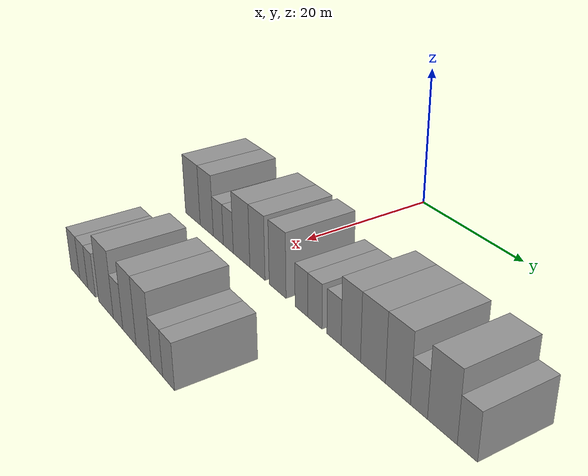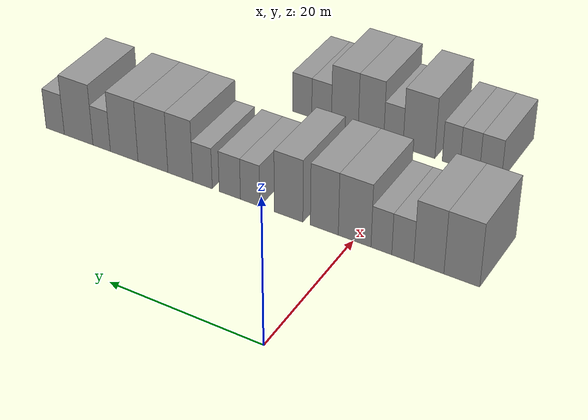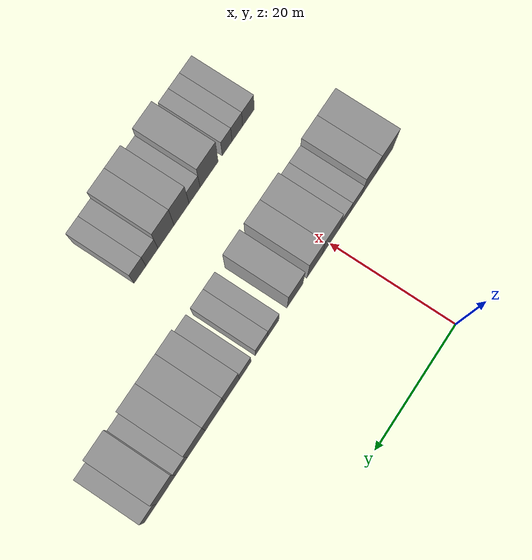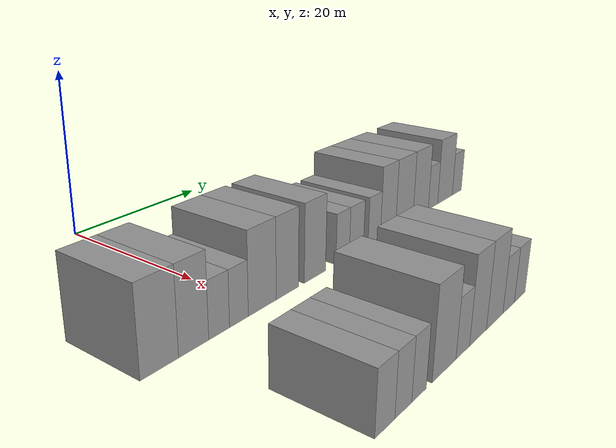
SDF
<sdf version="1.6">
 <world name="default">
  <model name="building_52">
   <static>1</static>
   <pose>25.0000 -13.6989 0 0.000000 0.000000 0.000000</pose>
   <link name="link">
    <pose>0 0 4.50 0 0 0</pose>
    <collision name="collision"><geometry><box><size>10.0000 4.3961 9.0000</size></box></geometry></collision>
    <visual name="visual">
     <cast_shadows>0</cast_shadows>
     <geometry><box><size>10.0000 4.3961 9.0000</size></box></geometry>
     <material>
      <script>
       <uri>model://grey_wall/materials/scripts</uri>
       <uri>model://grey_wall/materials/textures</uri>
       <name>vrc/grey_wall</name>
      </script>
     </material>
    </visual>
   </link>
  </model>
  <model name="building_53">
   <static>1</static>
   <pose>25.0000 -9.6226 0 0.000000 0.000000 0.000000</pose>
   <link name="link">
    <pose>0 0 4.50 0 0 0</pose>
    <collision name="collision"><geometry><box><size>10.0000 3.7566 9.0000</size></box></geometry></collision>
    <visual name="visual">
     <cast_shadows>0</cast_shadows>
     <geometry><box><size>10.0000 3.7566 9.0000</size></box></geometry>
     <material>
      <script>
       <uri>model://grey_wall/materials/scripts</uri>
       <uri>model://grey_wall/materials/textures</uri>
       <name>vrc/grey_wall</name>
      </script>
     </material>
    </visual>
   </link>
  </model>
  <model name="building_54">
   <static>1</static>
   <pose>25.0000 -6.3497 0 0.000000 0.000000 0.000000</pose>
   <link name="link">
    <pose>0 0 3.00 0 0 0</pose>
    <collision name="collision"><geometry><box><size>10.0000 2.7892 6.0000</size></box></geometry></collision>
    <visual name="visual">
     <cast_shadows>0</cast_shadows>
     <geometry><box><size>10.0000 2.7892 6.0000</size></box></geometry>
     <material>
      <script>
       <uri>model://grey_wall/materials/scripts</uri>
       <uri>model://grey_wall/materials/textures</uri>
       <name>vrc/grey_wall</name>
      </script>
     </material>
    </visual>
   </link>
  </model>
  <model name="building_55">
   <static>1</static>
   <pose>25.0000 -3.6204 0 0.000000 0.000000 0.000000</pose>
   <link name="link">
    <pose>0 0 3.00 0 0 0</pose>
    <collision name="collision"><geometry><box><size>10.0000 2.6694 6.0000</size></box></geometry></collision>
    <visual name="visual">
     <cast_shadows>0</cast_shadows>
     <geometry><box><size>10.0000 2.6694 6.0000</size></box></geometry>
     <material>
      <script>
       <uri>model://grey_wall/materials/scripts</uri>
       <uri>model://grey_wall/materials/textures</uri>
       <name>vrc/grey_wall</name>
      </script>
     </material>
    </visual>
   </link>
  </model>
  <model name="building_56">
   <static>1</static>
   <pose>25.0000 -0.1524 0 0.000000 0.000000 0.000000</pose>
   <link name="link">
    <pose>0 0 4.50 0 0 0</pose>
    <collision name="collision"><geometry><box><size>10.0000 4.2665 9.0000</size></box></geometry></collision>
    <visual name="visual">
     <cast_shadows>0</cast_shadows>
     <geometry><box><size>10.0000 4.2665 9.0000</size></box></geometry>
     <material>
      <script>
       <uri>model://grey_wall/materials/scripts</uri>
       <uri>model://grey_wall/materials/textures</uri>
       <name>vrc/grey_wall</name>
      </script>
     </material>
    </visual>
   </link>
  </model>
  <model name="building_57">
   <static>1</static>
   <pose>25.0000 3.8382 0 0.000000 0.000000 0.000000</pose>
   <link name="link">
    <pose>0 0 4.50 0 0 0</pose>
    <collision name="collision"><geometry><box><size>10.0000 3.7148 9.0000</size></box></geometry></collision>
    <visual name="visual">
     <cast_shadows>0</cast_shadows>
     <geometry><box><size>10.0000 3.7148 9.0000</size></box></geometry>
     <material>
      <script>
       <uri>model://grey_wall/materials/scripts</uri>
       <uri>model://grey_wall/materials/textures</uri>
       <name>vrc/grey_wall</name>
      </script>
     </material>
    </visual>
   </link>
  </model>
  <model name="building_58">
   <static>1</static>
   <pose>25.0000 8.6369 0 0.000000 0.000000 0.000000</pose>
   <link name="link">
    <pose>0 0 4.50 0 0 0</pose>
    <collision name="collision"><geometry><box><size>10.0000 3.8825 9.0000</size></box></geometry></collision>
    <visual name="visual">
     <cast_shadows>0</cast_shadows>
     <geometry><box><size>10.0000 3.8825 9.0000</size></box></geometry>
     <material>
      <script>
       <uri>model://grey_wall/materials/scripts</uri>
       <uri>model://grey_wall/materials/textures</uri>
       <name>vrc/grey_wall</name>
      </script>
     </material>
    </visual>
   </link>
  </model>
  <model name="building_59">
   <static>1</static>
   <pose>25.0000 13.9258 0 0.000000 0.000000 0.000000</pose>
   <link name="link">
    <pose>0 0 3.00 0 0 0</pose>
    <collision name="collision"><geometry><box><size>10.0000 2.6954 6.0000</size></box></geometry></collision>
    <visual name="visual">
     <cast_shadows>0</cast_shadows>
     <geometry><box><size>10.0000 2.6954 6.0000</size></box></geometry>
     <material>
      <script>
       <uri>model://grey_wall/materials/scripts</uri>
       <uri>model://grey_wall/materials/textures</uri>
       <name>vrc/grey_wall</name>
      </script>
     </material>
    </visual>
   </link>
  </model>
  <model name="building_60">
   <static>1</static>
   <pose>25.0000 16.7665 0 0.000000 0.000000 0.000000</pose>
   <link name="link">
    <pose>0 0 3.00 0 0 0</pose>
    <collision name="collision"><geometry><box><size>10.0000 2.9861 6.0000</size></box></geometry></collision>
    <visual name="visual">
     <cast_shadows>0</cast_shadows>
     <geometry><box><size>10.0000 2.9861 6.0000</size></box></geometry>
     <material>
      <script>
       <uri>model://grey_wall/materials/scripts</uri>
       <uri>model://grey_wall/materials/textures</uri>
       <name>vrc/grey_wall</name>
      </script>
     </material>
    </visual>
   </link>
  </model>
  <model name="building_61">
   <static>1</static>
   <pose>25.0000 20.6557 0 0.000000 0.000000 0.000000</pose>
   <link name="link">
    <pose>0 0 3.00 0 0 0</pose>
    <collision name="collision"><geometry><box><size>10.0000 2.7921 6.0000</size></box></geometry></collision>
    <visual name="visual">
     <cast_shadows>0</cast_shadows>
     <geometry><box><size>10.0000 2.7921 6.0000</size></box></geometry>
     <material>
      <script>
       <uri>model://grey_wall/materials/scripts</uri>
       <uri>model://grey_wall/materials/textures</uri>
       <name>vrc/grey_wall</name>
      </script>
     </material>
    </visual>
   </link>
  </model>
  <model name="building_62">
   <static>1</static>
   <pose>25.0000 23.8682 0 0.000000 0.000000 0.000000</pose>
   <link name="link">
    <pose>0 0 4.50 0 0 0</pose>
    <collision name="collision"><geometry><box><size>10.0000 3.6329 9.0000</size></box></geometry></collision>
    <visual name="visual">
     <cast_shadows>0</cast_shadows>
     <geometry><box><size>10.0000 3.6329 9.0000</size></box></geometry>
     <material>
      <script>
       <uri>model://grey_wall/materials/scripts</uri>
       <uri>model://grey_wall/materials/textures</uri>
       <name>vrc/grey_wall</name>
      </script>
     </material>
    </visual>
   </link>
  </model>
  <model name="building_63">
   <static>1</static>
   <pose>25.0000 27.8984 0 0.000000 0.000000 0.000000</pose>
   <link name="link">
    <pose>0 0 4.50 0 0 0</pose>
    <collision name="collision"><geometry><box><size>10.0000 4.4277 9.0000</size></box></geometry></collision>
    <visual name="visual">
     <cast_shadows>0</cast_shadows>
     <geometry><box><size>10.0000 4.4277 9.0000</size></box></geometry>
     <material>
      <script>
       <uri>model://grey_wall/materials/scripts</uri>
       <uri>model://grey_wall/materials/textures</uri>
       <name>vrc/grey_wall</name>
      </script>
     </material>
    </visual>
   </link>
  </model>
  <model name="building_64">
   <static>1</static>
   <pose>25.0000 32.2026 0 0.000000 0.000000 0.000000</pose>
   <link name="link">
    <pose>0 0 4.50 0 0 0</pose>
    <collision name="collision"><geometry><box><size>10.0000 4.1807 9.0000</size></box></geometry></collision>
    <visual name="visual">
     <cast_shadows>0</cast_shadows>
     <geometry><box><size>10.0000 4.1807 9.0000</size></box></geometry>
     <material>
      <script>
       <uri>model://grey_wall/materials/scripts</uri>
       <uri>model://grey_wall/materials/textures</uri>
       <name>vrc/grey_wall</name>
      </script>
     </material>
    </visual>
   </link>
  </model>
  <model name="building_65">
   <static>1</static>
   <pose>25.0000 35.6311 0 0.000000 0.000000 0.000000</pose>
   <link name="link">
    <pose>0 0 3.00 0 0 0</pose>
    <collision name="collision"><geometry><box><size>10.0000 2.6762 6.0000</size></box></geometry></collision>
    <visual name="visual">
     <cast_shadows>0</cast_shadows>
     <geometry><box><size>10.0000 2.6762 6.0000</size></box></geometry>
     <material>
      <script>
       <uri>model://grey_wall/materials/scripts</uri>
       <uri>model://grey_wall/materials/textures</uri>
       <name>vrc/grey_wall</name>
      </script>
     </material>
    </visual>
   </link>
  </model>
  <model name="building_66">
   <static>1</static>
   <pose>25.0000 39.1964 0 0.000000 0.000000 0.000000</pose>
   <link name="link">
    <pose>0 0 4.50 0 0 0</pose>
    <collision name="collision"><geometry><box><size>10.0000 4.4546 9.0000</size></box></geometry></collision>
    <visual name="visual">
     <cast_shadows>0</cast_shadows>
     <geometry><box><size>10.0000 4.4546 9.0000</size></box></geometry>
     <material>
      <script>
       <uri>model://grey_wall/materials/scripts</uri>
       <uri>model://grey_wall/materials/textures</uri>
       <name>vrc/grey_wall</name>
      </script>
     </material>
    </visual>
   </link>
  </model>
  <model name="building_67">
   <static>1</static>
   <pose>25.0000 42.8614 0 0.000000 0.000000 0.000000</pose>
   <link name="link">
    <pose>0 0 3.00 0 0 0</pose>
    <collision name="collision"><geometry><box><size>10.0000 2.8753 6.0000</size></box></geometry></collision>
    <visual name="visual">
     <cast_shadows>0</cast_shadows>
     <geometry><box><size>10.0000 2.8753 6.0000</size></box></geometry>
     <material>
      <script>
       <uri>model://grey_wall/materials/scripts</uri>
       <uri>model://grey_wall/materials/textures</uri>
       <name>vrc/grey_wall</name>
      </script>
     </material>
    </visual>
   </link>
  </model>
  <model name="building_151">
   <static>1</static>
   <pose>44.0000 -8.6820 0 0.000000 0.000000 0.000000</pose>
   <link name="link">
    <pose>0 0 3.00 0 0 0</pose>
    <collision name="collision"><geometry><box><size>10.0000 2.8989 6.0000</size></box></geometry></collision>
    <visual name="visual">
     <cast_shadows>0</cast_shadows>
     <geometry><box><size>10.0000 2.8989 6.0000</size></box></geometry>
     <material>
      <script>
       <uri>model://grey_wall/materials/scripts</uri>
       <uri>model://grey_wall/materials/textures</uri>
       <name>vrc/grey_wall</name>
      </script>
     </material>
    </visual>
   </link>
  </model>
  <model name="building_152">
   <static>1</static>
   <pose>44.0000 -5.9228 0 0.000000 0.000000 0.000000</pose>
   <link name="link">
    <pose>0 0 3.00 0 0 0</pose>
    <collision name="collision"><geometry><box><size>10.0000 2.6196 6.0000</size></box></geometry></collision>
    <visual name="visual">
     <cast_shadows>0</cast_shadows>
     <geometry><box><size>10.0000 2.6196 6.0000</size></box></geometry>
     <material>
      <script>
       <uri>model://grey_wall/materials/scripts</uri>
       <uri>model://grey_wall/materials/textures</uri>
       <name>vrc/grey_wall</name>
      </script>
     </material>
    </visual>
   </link>
  </model>
  <model name="building_153">
   <static>1</static>
   <pose>44.0000 -3.4100 0 0.000000 0.000000 0.000000</pose>
   <link name="link">
    <pose>0 0 3.00 0 0 0</pose>
    <collision name="collision"><geometry><box><size>10.0000 2.4061 6.0000</size></box></geometry></collision>
    <visual name="visual">
     <cast_shadows>0</cast_shadows>
     <geometry><box><size>10.0000 2.4061 6.0000</size></box></geometry>
     <material>
      <script>
       <uri>model://grey_wall/materials/scripts</uri>
       <uri>model://grey_wall/materials/textures</uri>
       <name>vrc/grey_wall</name>
      </script>
     </material>
    </visual>
   </link>
  </model>
  <model name="building_154">
   <static>1</static>
   <pose>44.0000 0.9927 0 0.000000 0.000000 0.000000</pose>
   <link name="link">
    <pose>0 0 4.50 0 0 0</pose>
    <collision name="collision"><geometry><box><size>10.0000 4.3993 9.0000</size></box></geometry></collision>
    <visual name="visual">
     <cast_shadows>0</cast_shadows>
     <geometry><box><size>10.0000 4.3993 9.0000</size></box></geometry>
     <material>
      <script>
       <uri>model://grey_wall/materials/scripts</uri>
       <uri>model://grey_wall/materials/textures</uri>
       <name>vrc/grey_wall</name>
      </script>
     </material>
    </visual>
   </link>
  </model>
  <model name="building_155">
   <static>1</static>
   <pose>44.0000 4.5501 0 0.000000 0.000000 0.000000</pose>
   <link name="link">
    <pose>0 0 3.00 0 0 0</pose>
    <collision name="collision"><geometry><box><size>10.0000 2.7154 6.0000</size></box></geometry></collision>
    <visual name="visual">
     <cast_shadows>0</cast_shadows>
     <geometry><box><size>10.0000 2.7154 6.0000</size></box></geometry>
     <material>
      <script>
       <uri>model://grey_wall/materials/scripts</uri>
       <uri>model://grey_wall/materials/textures</uri>
       <name>vrc/grey_wall</name>
      </script>
     </material>
    </visual>
   </link>
  </model>
  <model name="building_156">
   <static>1</static>
   <pose>44.0000 7.7224 0 0.000000 0.000000 0.000000</pose>
   <link name="link">
    <pose>0 0 4.50 0 0 0</pose>
    <collision name="collision"><geometry><box><size>10.0000 3.6291 9.0000</size></box></geometry></collision>
    <visual name="visual">
     <cast_shadows>0</cast_shadows>
     <geometry><box><size>10.0000 3.6291 9.0000</size></box></geometry>
     <material>
      <script>
       <uri>model://grey_wall/materials/scripts</uri>
       <uri>model://grey_wall/materials/textures</uri>
       <name>vrc/grey_wall</name>
      </script>
     </material>
    </visual>
   </link>
  </model>
  <model name="building_157">
   <static>1</static>
   <pose>44.0000 11.4718 0 0.000000 0.000000 0.000000</pose>
   <link name="link">
    <pose>0 0 4.50 0 0 0</pose>
    <collision name="collision"><geometry><box><size>10.0000 3.8698 9.0000</size></box></geometry></collision>
    <visual name="visual">
     <cast_shadows>0</cast_shadows>
     <geometry><box><size>10.0000 3.8698 9.0000</size></box></geometry>
     <material>
      <script>
       <uri>model://grey_wall/materials/scripts</uri>
       <uri>model://grey_wall/materials/textures</uri>
       <name>vrc/grey_wall</name>
      </script>
     </material>
    </visual>
   </link>
  </model>
  <model name="building_158">
   <static>1</static>
   <pose>44.0000 14.8447 0 0.000000 0.000000 0.000000</pose>
   <link name="link">
    <pose>0 0 3.00 0 0 0</pose>
    <collision name="collision"><geometry><box><size>10.0000 2.8759 6.0000</size></box></geometry></collision>
    <visual name="visual">
     <cast_shadows>0</cast_shadows>
     <geometry><box><size>10.0000 2.8759 6.0000</size></box></geometry>
     <material>
      <script>
       <uri>model://grey_wall/materials/scripts</uri>
       <uri>model://grey_wall/materials/textures</uri>
       <name>vrc/grey_wall</name>
      </script>
     </material>
    </visual>
   </link>
  </model>
  <model name="building_159">
   <static>1</static>
   <pose>44.0000 17.6939 0 0.000000 0.000000 0.000000</pose>
   <link name="link">
    <pose>0 0 3.00 0 0 0</pose>
    <collision name="collision"><geometry><box><size>10.0000 2.8226 6.0000</size></box></geometry></collision>
    <visual name="visual">
     <cast_shadows>0</cast_shadows>
     <geometry><box><size>10.0000 2.8226 6.0000</size></box></geometry>
     <material>
      <script>
       <uri>model://grey_wall/materials/scripts</uri>
       <uri>model://grey_wall/materials/textures</uri>
       <name>vrc/grey_wall</name>
      </script>
     </material>
    </visual>
   </link>
  </model>
 </world>
</sdf>
